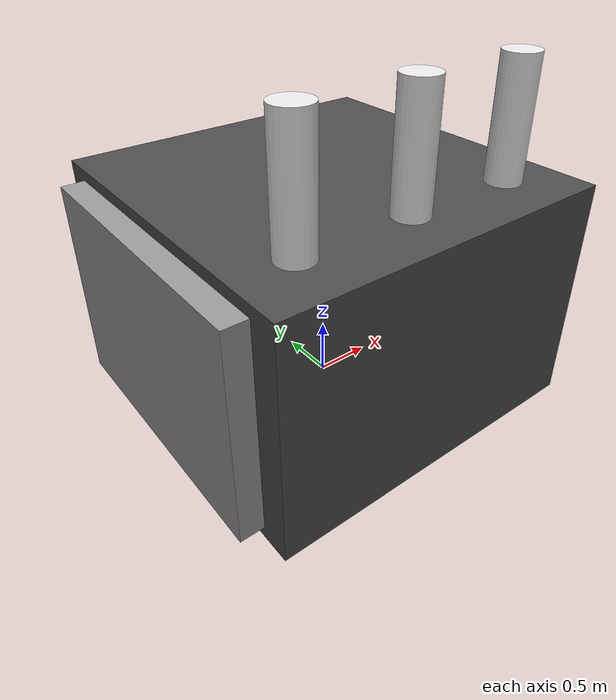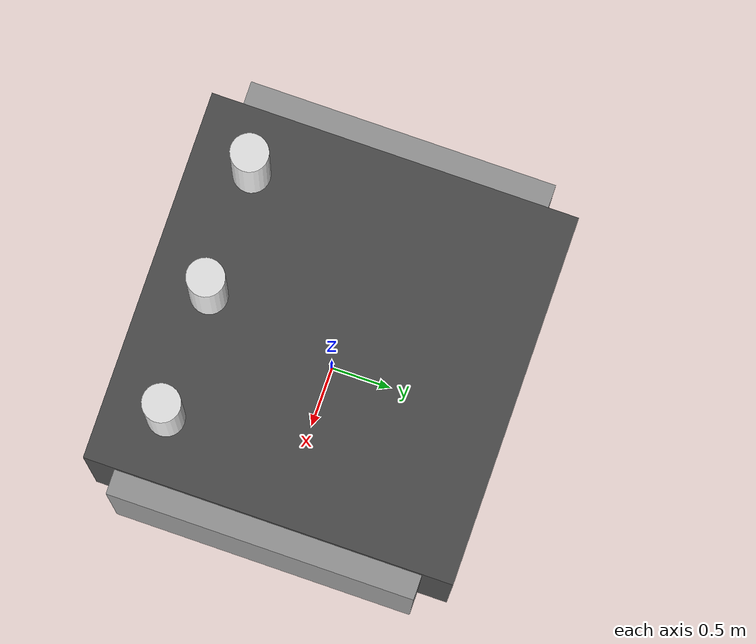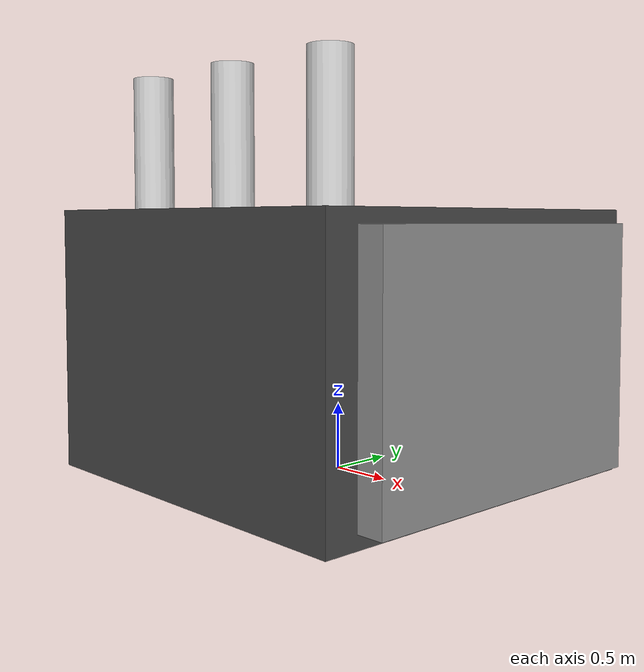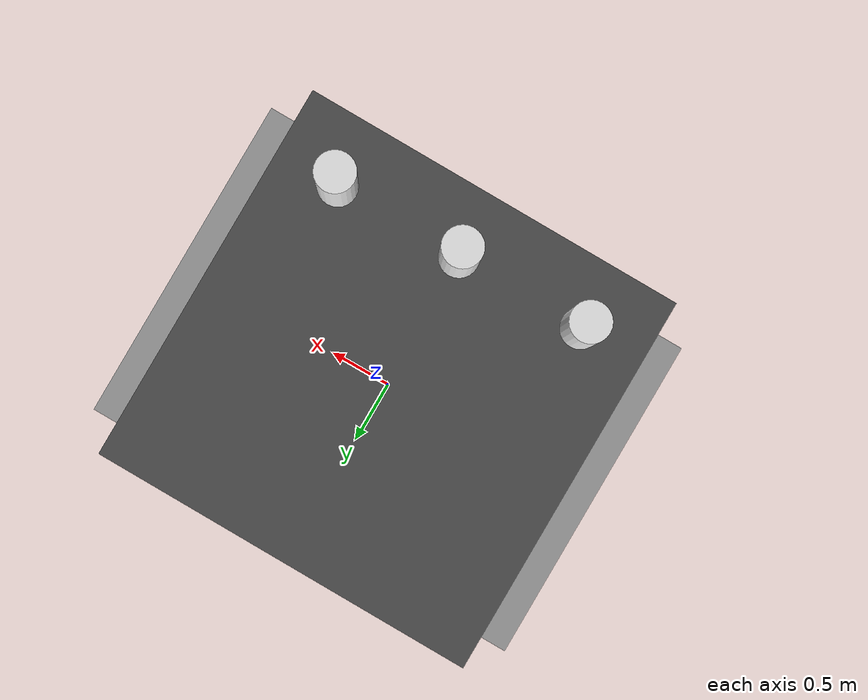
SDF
<?xml version="1.0" ?>
<sdf version="1.6">
  <model name="transformer">
    <static>true</static>
    <link name="link">
      <!-- PHYSICS/COLLISION OPTIMIZATION: Use a single simple Box for collision -->
      <collision name="collision">
        <pose>0 0 1.5 0 0 0</pose>
        <geometry><box><size>3 3 3</size></box></geometry>
      </collision>

      <!-- VISUAL: Slightly more complex to look like a transformer -->
      <visual name="main_body">
        <pose>0 0 1 0 0 0</pose>
        <geometry><box><size>3 3 2</size></box></geometry>
        <material><script><uri>file://media/materials/scripts/gazebo.material</uri><name>Gazebo/DarkGrey</name></script></material>
      </visual>
      <visual name="radiator_left">
        <pose>-1.6 0 1 0 0 0</pose>
        <geometry><box><size>0.2 2.5 1.8</size></box></geometry>
        <material><script><uri>file://media/materials/scripts/gazebo.material</uri><name>Gazebo/Grey</name></script></material>
      </visual>
      <visual name="radiator_right">
        <pose>1.6 0 1 0 0 0</pose>
        <geometry><box><size>0.2 2.5 1.8</size></box></geometry>
        <material><script><uri>file://media/materials/scripts/gazebo.material</uri><name>Gazebo/Grey</name></script></material>
      </visual>
      <visual name="bushing_1">
        <pose>-1 -1 2.5 0 0 0</pose>
        <geometry><cylinder><radius>0.15</radius><length>1</length></cylinder></geometry>
        <material><script><uri>file://media/materials/scripts/gazebo.material</uri><name>Gazebo/White</name></script></material>
      </visual>
      <visual name="bushing_2">
        <pose>0 -1 2.5 0 0 0</pose>
        <geometry><cylinder><radius>0.15</radius><length>1</length></cylinder></geometry>
        <material><script><uri>file://media/materials/scripts/gazebo.material</uri><name>Gazebo/White</name></script></material>
      </visual>
      <visual name="bushing_3">
        <pose>1 -1 2.5 0 0 0</pose>
        <geometry><cylinder><radius>0.15</radius><length>1</length></cylinder></geometry>
        <material><script><uri>file://media/materials/scripts/gazebo.material</uri><name>Gazebo/White</name></script></material>
      </visual>
    </link>
  </model>
</sdf>
